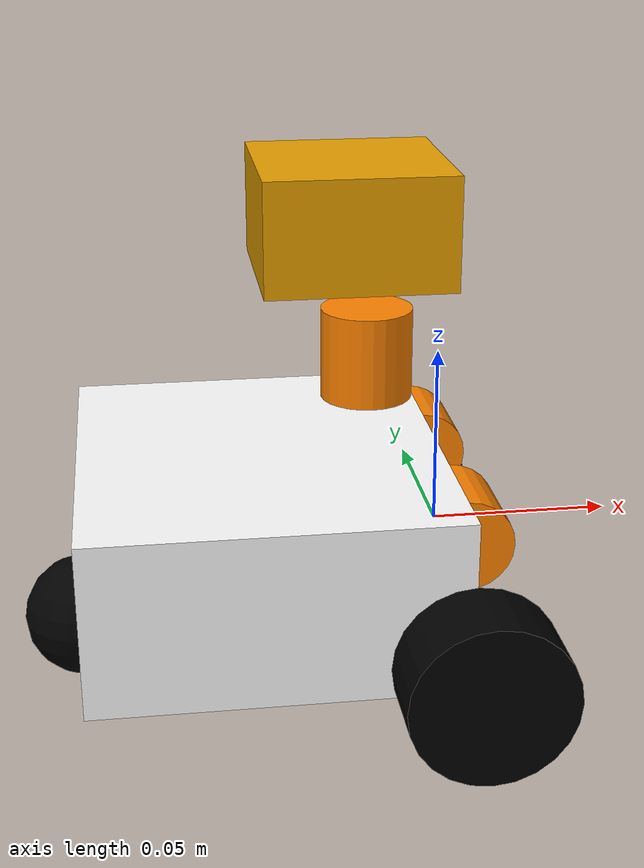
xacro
<?xml version="1.0"?>
<robot xmlns:xacro="http://www.ros.org/wiki/xacro" name="myfirst">
  <!-- Robot chassis dimensions -->
  <xacro:property name="base_width" value="0.113" />
  <xacro:property name="base_length" value="0.1" />
  <xacro:property name="base_height" value="0.048" />

  <!-- NXT motor dimensions -->
  <xacro:property name="motor_radius" value="0.0125" />
  <xacro:property name="motor_width" value="0.025" />

  <!-- Drive wheels motor names & positions -->
  <xacro:property name="drive_wheel_motor_r_name" value="wheel_motor_r" />
  <xacro:property name="drive_wheel_motor_l_name" value="wheel_motor_l" />
  <xacro:property name="wheel_motor_x_off" value="0" />
  <xacro:property name="wheel_motor_y_off" value="0.031" />
  <xacro:property name="wheel_motor_z_off" value="${(base_height/2)-motor_radius}" />

  <!-- Drive wheels names, positions & dimensions -->
  <xacro:property name="drive_wheel_r_name" value="wheel_r" />
  <xacro:property name="drive_wheel_l_name" value="wheel_l" />
  <xacro:property name="wheels_radius" value="0.022" />
  <xacro:property name="wheels_width" value="0.022" />
  <xacro:property name="wheels_x_off" value="0" />
  <xacro:property name="wheels_y_gap" value="${base_width / 2 + wheels_width / 2 + 0.001}" />
  <xacro:property name="wheels_z_off" value="-0.015" />

  <!-- Caster wheel position -->
  <xacro:property name="caster_wheel_x_off" value="${-base_length}" />
  <xacro:property name="caster_wheel_z_off" value="${wheels_z_off}" />
  <xacro:property name="caster_wheel_radius" value="${wheels_radius}" />

  <!-- Radar joint names -->
  <xacro:property name="radar_motor_name" value="radar_motor" />
  <xacro:property name="radar_name" value="radar" />

  <!-- Radar motor position -->
  <xacro:property name="radar_motor_x_off" value="-0.02" />
  <xacro:property name="radar_motor_y_off" value="0" />
  <xacro:property name="radar_motor_z_off" value="0.012" />

  <!-- Radar position & dimensions -->
  <xacro:property name="radar_x_off" value="0" />
  <xacro:property name="radar_y_off" value="0" />
  <xacro:property name="radar_z_off" value="0.05" />
  <xacro:property name="radar_length" value="0.05" />
  <xacro:property name="radar_width" value="0.05" />
  <xacro:property name="radar_height" value="0.03" />

  <!-- Define intertial property macros  -->
  <xacro:macro name="box_inertia" params="m w h d">
    <inertial>
      <origin xyz="0 0 0" rpy="${pi/2} 0 ${pi/2}"/>
      <mass value="${m}"/>
      <inertia ixx="${(m/12) * (h*h + d*d)}" ixy="0.0" ixz="0.0" iyy="${(m/12) * (w*w + d*d)}" iyz="0.0" izz="${(m/12) * (w*w + h*h)}"/>
    </inertial>
  </xacro:macro>

  <xacro:macro name="cylinder_inertia" params="m r h">
    <inertial>
      <origin xyz="0 0 0" rpy="${pi/2} 0 0" />
      <mass value="${m}"/>
      <inertia ixx="${(m/12) * (3*r*r + h*h)}" ixy = "0" ixz = "0" iyy="${(m/12) * (3*r*r + h*h)}" iyz = "0" izz="${(m/2) * (r*r)}"/>
    </inertial>
  </xacro:macro>

  <xacro:macro name="sphere_inertia" params="m r">
    <inertial>
      <mass value="${m}"/>
      <inertia ixx="${(2/5) * m * (r*r)}" ixy="0.0" ixz="0.0" iyy="${(2/5) * m * (r*r)}" iyz="0.0" izz="${(2/5) * m * (r*r)}"/>
    </inertial>
  </xacro:macro>

  <!-- Define material -->
  <material name="black">
    <color rgba="0 0 0 1"/>
  </material>
  <material name="white">
    <color rgba="1 1 1 1"/>
  </material>
  <material name="orange">
    <color rgba="1.0 0.513 0.0 1.0"/>
  </material>

  <!-- Robot's main chassis -->
  <link name="base_link">
    <visual>
      <origin xyz="${-base_length/2} 0 0" rpy="0 0 0"/>
      <geometry>
        <box size="${base_length} ${base_width} ${base_height}"/>
      </geometry>
      <material name="white"/>
    </visual>
    <collision>
      <origin xyz="${-base_length/2} 0 0" rpy="0 0 0"/>
      <geometry>
        <box size="${base_length} ${base_width} ${base_height}"/>
      </geometry>
    </collision>

    <xacro:box_inertia m="15" w="${base_width}" d="${base_length}" h="${base_height}"/>
  </link>

  <!-- Robot Footprint -->
  <link name="base_footprint"/>

  <joint name="base_joint" type="fixed">
    <parent link="base_link"/>
    <child link="base_footprint"/>
    <origin xyz="0.0 0.0 ${-(wheels_radius-wheels_z_off)}" rpy="0 0 0"/>
  </joint>

  <!-- Motor with wheel macro -->
  <xacro:macro name="motor_and_wheel" params="motor_name motor_mimic_name y_reflect ">
    <!-- Motor -->
    <link name="${motor_name}_link">
      <visual>
        <origin xyz="0 0 0" rpy="${pi/2} 0 0"/>
        <geometry>
          <cylinder radius="${motor_radius}" length="${motor_width}"/>
        </geometry>
        <material name="orange"/>
      </visual>
      <collision>
        <origin xyz="0 0 0" rpy="${pi/2} 0 0"/>
        <geometry>
          <cylinder radius="${motor_radius}" length="${motor_width}"/>
        </geometry>
      </collision>
    </link>

    <joint name="${motor_name}" type="continuous">
      <parent link="base_link"/>
      <child link="${motor_name}_link"/>
      <origin xyz="${wheel_motor_x_off} ${y_reflect * wheel_motor_y_off} ${wheel_motor_z_off}" rpy="0 0 0"/>
      <axis xyz="0 1 0"/>
    </joint>

    <!-- Wheel -->
    <link name="${motor_mimic_name}_link">
      <visual>
        <origin xyz="0 0 0" rpy="${pi/2} 0 0"/>
        <geometry>
          <cylinder radius="${wheels_radius}" length="${wheels_width}"/>
        </geometry>
        <material name="black"/>
      </visual>
      <collision>
        <origin xyz="0 0 0" rpy="${pi/2} 0 0"/>
        <geometry>
          <cylinder radius="${wheels_radius}" length="${wheels_width}"/>
        </geometry>
      </collision>

      <xacro:cylinder_inertia m="0.5" r="${wheels_radius}" h="${wheels_width}"/>
    </link>

    <joint name="${motor_mimic_name}" type="continuous">
      <parent link="base_link"/>
      <child link="${motor_mimic_name}_link"/>
      <origin xyz="${wheels_x_off} ${y_reflect * wheels_y_gap} ${wheels_z_off}" rpy="0 0 0"/>
      <axis xyz="0 1 0"/>
    </joint>
  </xacro:macro>

  <xacro:motor_and_wheel motor_name="${drive_wheel_motor_r_name}" motor_mimic_name="${drive_wheel_r_name}" y_reflect="1" />
  <xacro:motor_and_wheel motor_name="${drive_wheel_motor_l_name}" motor_mimic_name="${drive_wheel_l_name}" y_reflect="-1" />

  <!-- Caster Wheel -->
  <link name="caster_wheel">
    <visual>
      <geometry>
        <sphere radius="${(caster_wheel_radius + caster_wheel_z_off - (base_height / 2))}"/>
      </geometry>
      <material name="black"/>
    </visual>
    <collision>
      <origin xyz="0 0 0" rpy="0 0 0"/>
      <geometry>
        <sphere radius="${(caster_wheel_radius + caster_wheel_z_off - (base_height / 2))}"/>
      </geometry>
    </collision>

    <xacro:sphere_inertia m="0.5" r="${(caster_wheel_radius + caster_wheel_z_off - (base_height / 2))}"/>
  </link>

  <joint name="caster_joint" type="fixed">
    <parent link="base_link"/>
    <child link="caster_wheel"/>
    <origin xyz="${caster_wheel_x_off} 0.0 ${-(base_height / 2)}" rpy="0 0 0"/>
  </joint>

  <!-- Radar -->
  <link name="${radar_motor_name}_link">
    <visual>
      <origin xyz="0 0 0" rpy="0 0 0"/>
      <geometry>
        <cylinder radius="${motor_radius}" length="${motor_width}"/>
      </geometry>
      <material name="orange"/>
    </visual>
    <collision>
      <origin xyz="0 0 0" rpy="0 0 0"/>
      <geometry>
        <cylinder radius="${motor_radius}" length="${motor_width}"/>
      </geometry>
    </collision>
    <xacro:cylinder_inertia m="0.5" r="${motor_radius}" h="${motor_width}"/>
  </link>

  <joint name="${radar_motor_name}" type="continuous">
    <parent link="base_link"/>
    <child link="${radar_motor_name}_link"/>
    <origin xyz="${radar_motor_x_off} ${radar_motor_y_off} ${base_height/2 + radar_height/2 + radar_motor_z_off}" rpy="0 0 0"/>
    <axis xyz="0 0 1"/>
  </joint>

  <link name="${radar_name}_link">
    <visual>
      <origin xyz="${-radar_length / 2} 0 0" rpy="0 0 0"/>
      <geometry>
        <box size="${radar_length} ${radar_width} ${radar_height}"/>
      </geometry>
    </visual>
    <collision>
      <origin xyz="${-radar_length / 2} 0 0" rpy="0 0 0"/>
      <geometry>
        <box size="${radar_length} ${radar_width} ${radar_height}"/>
      </geometry>
    </collision>

    <xacro:box_inertia m="0.5" w="${radar_width}" d="${radar_length}" h="${radar_height}"/>
  </link>

  <joint name="${radar_name}" type="continuous">
    <parent link="base_link"/>
    <child link="${radar_name}_link"/>
    <origin xyz="${radar_x_off} ${radar_y_off} ${base_height/2 + radar_height/2 + radar_z_off}" rpy="0 0 0"/>
    <axis xyz="0 0 1"/>
  </joint>
</robot>
